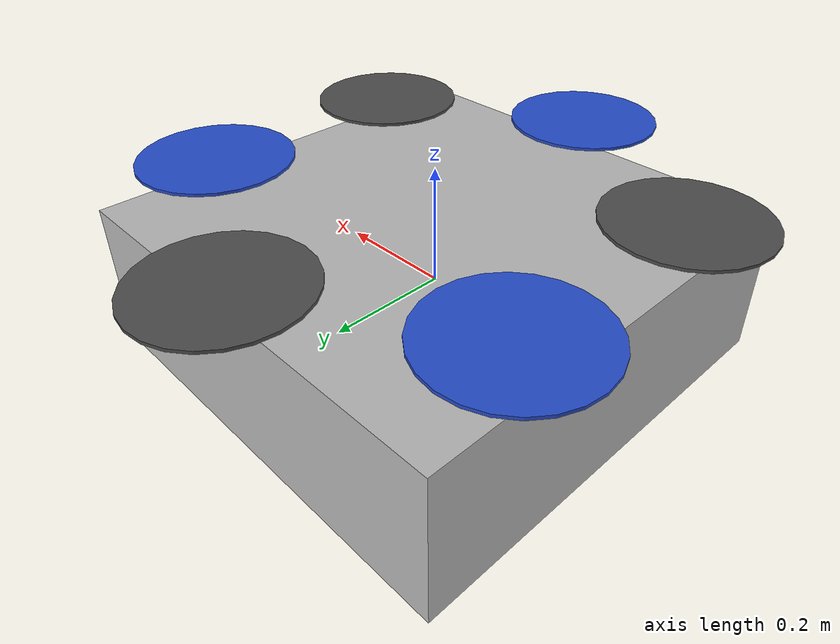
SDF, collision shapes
<?xml version='1.0'?>
<sdf version='1.5'>
  <model name='sdu_drone_mono_cam'>

    <include>
      <uri>model://sdu_drone</uri>
    </include>

    <include>
      <uri>model://sdu_mono_cam_bottom</uri>
      <pose>0 0 -0.05 0 1.57 -1.57</pose>
    </include>

    <include>
      <uri>model://sdu_mono_cam_front</uri>
      <pose>0 0 0 0 0 0</pose>
    </include>

    <joint name='sensor_link_bottom' type='revolute'>
      <child>sdu_mono_cam_bottom::link</child>
      <parent>sdu_drone::base_link</parent>
      <axis>
        <xyz>1 0 0</xyz>
        <limit>
          <lower>0</lower>
          <upper>0</upper>
          <effort>0</effort>
          <velocity>0</velocity>
        </limit>
        <dynamics>
          <spring_reference>0</spring_reference>
          <spring_stiffness>0</spring_stiffness>
        </dynamics>
        <use_parent_model_frame>1</use_parent_model_frame>
      </axis>
    </joint>

    <joint name='sensor_link_front' type='revolute'>
      <child>sdu_mono_cam_front::link</child>
      <parent>sdu_drone::base_link</parent>
      <axis>
        <xyz>1 0 0</xyz>
        <limit>
          <lower>0</lower>
          <upper>0</upper>
          <effort>0</effort>
          <velocity>0</velocity>
        </limit>
        <dynamics>
          <spring_reference>0</spring_reference>
          <spring_stiffness>0</spring_stiffness>
        </dynamics>
        <use_parent_model_frame>1</use_parent_model_frame>
      </axis>
    </joint>

  </model>
</sdf>
